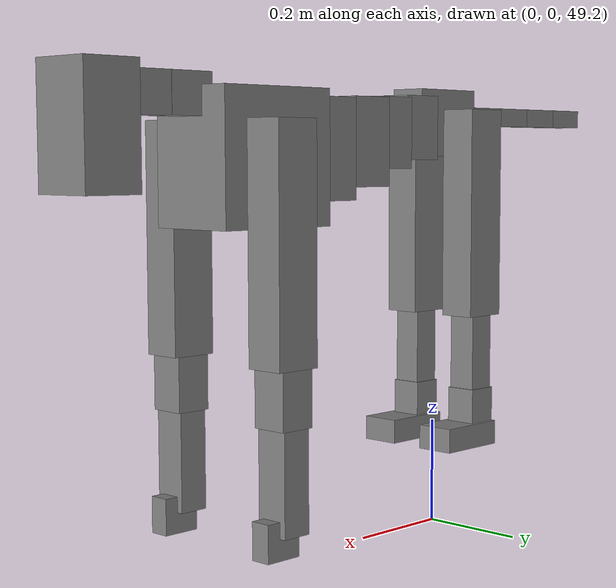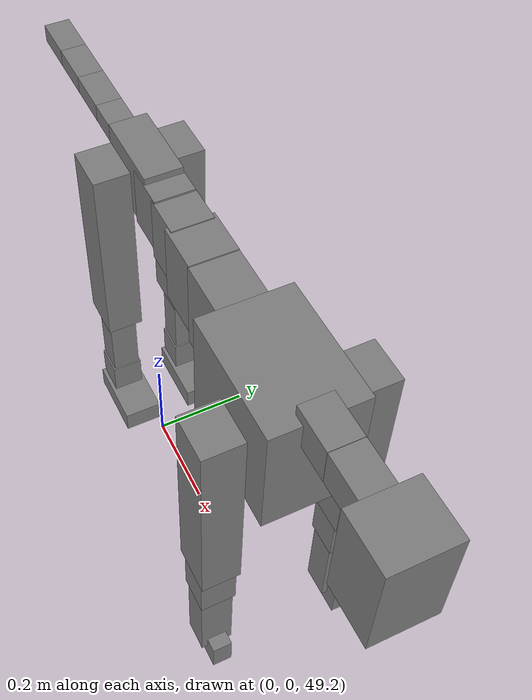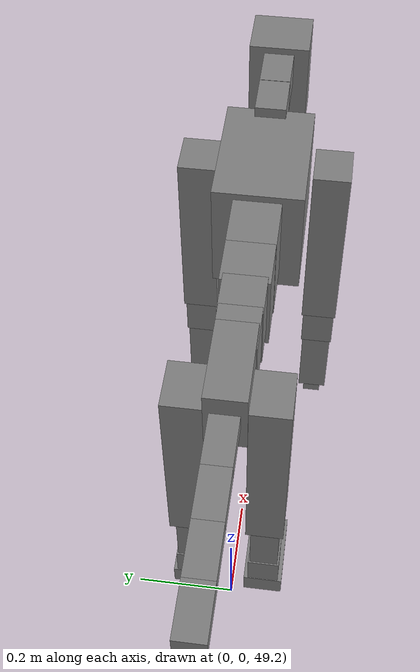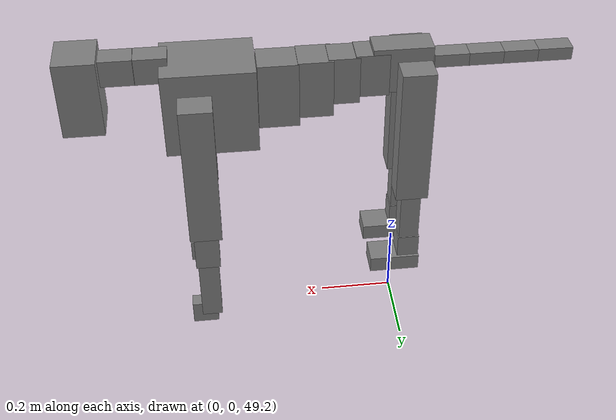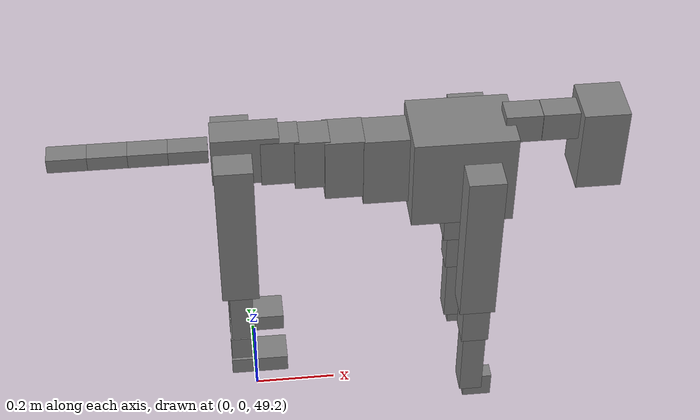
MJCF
<mujoco model="dog">

    <default>
        <joint armature="0.02" stiffness="1" damping="0.2" limited="true"/>
        <geom condim="3" friction="1 0.05 0.05" margin="0.01"/>
        <motor ctrllimited="true" ctrlrange="-1.0 1.0" forcelimited="true" gear="50"/>
    </default>

    <compiler inertiafromgeom="true" angle="radian"/>

    <option timestep="0.016" iterations="50" tolerance="1e-10" solver="Newton" jacobian="dense" cone="pyramidal"/>

    <size nconmax="20000" njmax="60000" nstack="5000000"/>
    <visual>
        <map force="0.1" zfar="30"/>
        <rgba haze="0.15 0.25 0.35 1"/>
        <quality shadowsize="2048"/>
        <global offwidth="800" offheight="800"/>
    </visual>

    <asset>
        <texture type="skybox" builtin="gradient" rgb1="0.3 0.5 0.7" rgb2="0 0 0" width="512" height="512"/>
        <texture name="texplane" type="2d" builtin="checker" rgb1=".2 .3 .4" rgb2=".1 0.15 0.2" width="512" height="512"
                 mark="cross" markrgb=".8 .8 .8"/>
        <texture name="texgeom" type="cube" builtin="flat" mark="cross" width="127" height="1278" rgb1="0.8 0.6 0.4"
                 rgb2="0.8 0.6 0.4" markrgb="1 1 1" random="0.01"/>

        <material name="matplane" reflectance="0.3" texture="texplane" texrepeat="1 1" texuniform="true"/>
        <material name="matgeom" texture="texgeom" texuniform="true" rgba="0.8 0.6 .4 1"/>
    </asset>

    <worldbody>
        <geom name="floor" pos="0 0 0" size="0 0 .25" type="plane" material="matplane" condim="3"/>

        <light directional="false" diffuse=".2 .2 .2" specular="0 0 0" pos="0 0 5" dir="0 0 -1" castshadow="false"/>
        <light mode="targetbodycom" target="torso" directional="false" diffuse=".8 .8 .8" specular="0.3 0.3 0.3"
               pos="0 0 4.0" dir="0 0 -1"/>

        <body name="root" pos="0 0 50">
            <freejoint name="root_1"/>
            <geom type="box" pos="0 0 -0.02" size="0.0774  0.0358  0.063" density="2030"/>

            <body name="spine1" pos="0.054 0 0">
                <joint name="spine1_y" axis="0 1 0" range="0 0.7" limited="true"/>
                <geom type="box" pos="0.02375 0 -0.03" size="0.04375  0.0375  0.05985" density="2030"/>

                <body name="spine2" pos="0.0612 0 0">
                    <joint name="spine2_y" axis="0 1 0" range="-0.15 0.15" limited="true"/>
                    <geom type="box" pos="0.03555  0  -0.04" size="0.04055  0.039  0.06615" density="2030"/>

                    <body name="spine3" pos="0.0730 0 0">
                        <joint name="spine3_y" axis="0 1 0" range="-0.15 0.15" limited="true"/>
                        <geom type="box" pos="0.03555  0  -0.057" size="0.04555  0.0445  0.081" density="2030"/>

                        <body name="spine4" pos="0.0780 0 0">
                            <joint name="spine4_y" axis="0 1 0" range="-0.15 0.15" limited="true"/>
                            <geom type="box" pos="0.05265  0  -0.07" size="0.05265  0.045  0.09135" density="2030"/>

                            <body name="torso" pos="0.1082 0 0">
                                <joint name="torso_y" axis="0 1 0" range="-0.15 0.15" limited="true"/>
                                <geom type="box" pos="0.11925  0  -0.085" size="0.11925  0.085  0.11745"
                                      density="2030"/>

                                <body name="neck1" pos="0.2160  0   0.0180">
                                    <joint name="neck1_y" axis="0 1 0" range="-1.2  -1" limited="true"/>
                                    <geom type="box" pos="0.0423  0  0" size="0.0423  0.03  0.036" density="2325"/>

                                    <body name="neck2" pos="0.0853  0  0">
                                        <joint name="neck2_y" axis="0 1 0" range="0.1  0" limited="true"/>
                                        <geom type="box" pos="0.0423  0  0" size="0.0423  0.03  0.036" density="2325"/>

                                        <body name="head" pos="0.0853  0  0">
                                            <joint name="head_y" axis="0 1 0" range="-0.3  -0.2" limited="true"/>
                                            <geom type="box" pos="0.0531  0  -0.055" size="0.0531  0.06  0.1044"
                                                  density="4030"/>

                                        </body>
                                    </body>
                                </body>

                                <body name="front_shoulder" pos="0.156  0   -0.0480">
                                    <joint name="front_shoulder_y" axis="0 1 0" range="-1 1.5" limited="true"/>
                                    <geom type="box" pos="0 0.13 -0.1768" size="0.0427  0.0365  0.2035" density="1158"/>
                                    <geom type="box" pos="0 -0.13 -0.1768" size="0.0427  0.0365  0.2035"
                                          density="1158"/>

                                    <body name="front_elbow" pos="0  0  -0.3536">
                                        <joint name="front_elbow_y" axis="0 1 0" range="-2 0" limited="true"/>
                                        <geom type="box" pos="0 0.13 -0.0626" size="0.0328  0.0335  0.0626"
                                              density="1081"/>
                                        <geom type="box" pos="0 -0.13 -0.0626" size="0.0328  0.0335  0.0626"
                                              density="1081"/>

                                        <body name="front_wrist" pos="0  0  -0.1252">
                                            <joint name="front_wrist_y" axis="0 1 0" range="-0.2 0" limited="true"/>
                                            <geom type="box" pos="0 0.13 -0.0826" size="0.0276  0.0307  0.0958"
                                                  density="1664"/>
                                            <geom type="box" pos="0 -0.13 -0.0826" size="0.0276  0.0307  0.0958"
                                                  density="1664"/>

                                            <body name="front_finger_end" pos="0  0  -0.1652">
                                                <joint name="front_finger_y" axis="0 1 0" range="-0.4 1"
                                                       limited="true"/>
                                                <geom type="box" pos="0.0190  0.13  -0.0178"
                                                      size="0.0349  0.0190  0.0328" density="1515"/>
                                                <geom type="box" pos="0.0190  -0.13  -0.0178"
                                                      size="0.0349  0.0190  0.0328" density="1515"/>

                                            </body>

                                        </body>
                                    </body>
                                </body>

                            </body>
                        </body>
                    </body>
                </body>
            </body>

            <body name="back_hip" pos="-0.03 0 -0.018">
                <joint name="back_hip_y" axis="0 1 0" range="-1.5 0.3" limited="true"/>
                <geom type="box" pos="0 0.07 -0.1736" size="0.0441  0.0346  0.1964" density="1154"/>
                <geom type="box" pos="0 -0.07 -0.1736" size="0.0441  0.0346  0.1964" density="1154"/>

                <body name="back_knee" pos="0  0  -0.3471">
                    <joint name="back_knee_y" axis="0 1 0" range="0 2.8" limited="true"/>
                    <geom type="box" pos="0 0.07 -0.0878" size="0.0271  0.0267  0.1034" density="1227"/>
                    <geom type="box" pos="0 -0.07 -0.0878" size="0.0271  0.0267  0.1034" density="1227"/>

                    <body name="back_ankle" pos="0  0  -0.1756">
                        <joint name="back_ankle_y" axis="0 1 0" range="-2.2 0" limited="true"/>
                        <geom type="box" pos="0 0.07 -0.0347" size="0.0298  0.0298  0.0459" density="1284"/>
                        <geom type="box" pos="0 -0.07 -0.0347" size="0.0298  0.0298  0.0459" density="1284"/>

                        <body name="back_toe_end" pos="0  0  -0.0693">
                            <joint name="back_toe_y" axis="0 1 0" range="-0.4 1" limited="true"/>
                            <geom type="box" pos="0.0374  0.07  -0.0078" size="0.0686  0.0374  0.0228" density="1515"/>
                            <geom type="box" pos="0.0374  -0.07  -0.0078" size="0.0686  0.0374  0.0228" density="1515"/>

                        </body>
                    </body>
                </body>
            </body>

            <body name="tail1" pos="-0.074 0 -0.006">
                <joint name="tail1_y" axis="0 1 0" range="-0.2 0.2" limited="true"/>
                <geom type="box" pos="-0.0536  0  0" size="0.045  0.025  0.0175" density="1587"/>

                <body name="tail2" pos="-0.09 0 0">
                    <joint name="tail2_y" axis="0 1 0" range="-0.2 0.2" limited="true"/>
                    <geom type="box" pos="-0.0536  0  0" size="0.045  0.025  0.0175" density="1587"/>

                    <body name="tail3" pos="-0.09 0 0">
                        <joint name="tail3_y" axis="0 1 0" range="-0.2 0.2" limited="true"/>
                        <geom type="box" pos="-0.0536  0  0" size="0.045  0.025  0.0175" density="1587"/>

                        <body name="tail4" pos="-0.09 0 0">
                            <joint name="tail4_y" axis="0 1 0" range="-0.2 0.2" limited="true"/>
                            <geom type="box" pos="-0.0536  0  0" size="0.045  0.025  0.0175" density="1587"/>

                        </body>
                    </body>
                </body>
            </body>
        </body>
    </worldbody>

    <actuator>
        <motor joint="spine1_y" forcerange="-150 150     "/>
        <motor joint="spine2_y" forcerange="-150 150     "/>
        <motor joint="spine3_y" forcerange="-150 150     "/>
        <motor joint="spine4_y" forcerange="-150 150     "/>
        <motor joint="torso_y" forcerange="-150 150     "/>
        <motor joint="neck1_y" forcerange="-100 100       "/>
        <motor joint="neck2_y" forcerange="-100 100       "/>
        <motor joint="head_y" forcerange="-150 150       "/>
        <motor joint="front_shoulder_y" forcerange="-173.58 169.63"/>
        <motor joint="front_elbow_y" forcerange="-182.43 161.07"/>
        <motor joint="front_wrist_y" forcerange="-99.49 146.27"/>
        <motor joint="front_finger_y" forcerange="-20.72 40.81"/>
        <motor joint="back_hip_y" forcerange="-344.97 315.95"/>
        <motor joint="back_knee_y" forcerange="-363.33 224.72"/>
        <motor joint="back_angle_y" forcerange="-139.19 237.07"/>
        <motor joint="back_toe_y" forcerange="-120.33 99.18"/>
        <motor joint="tail1_y" forcerange="-50 50     "/>
        <motor joint="tail2_y" forcerange="-50 50     "/>
        <motor joint="tail3_y" forcerange="-50 50     "/>
        <motor joint="tail4_y" forcerange="-50 50     "/>
    </actuator>
</mujoco>
